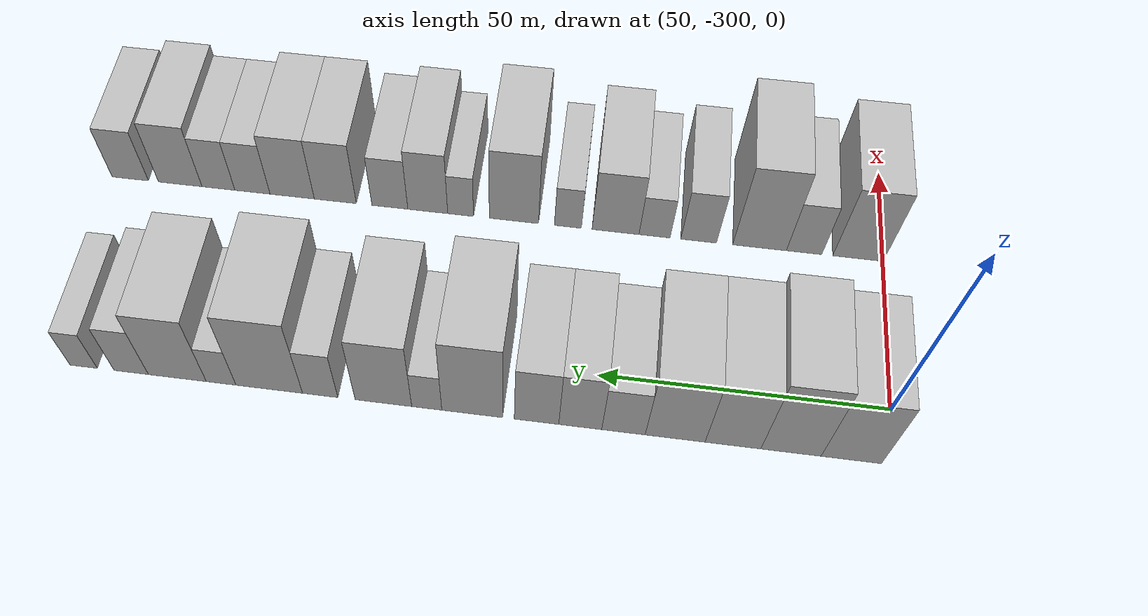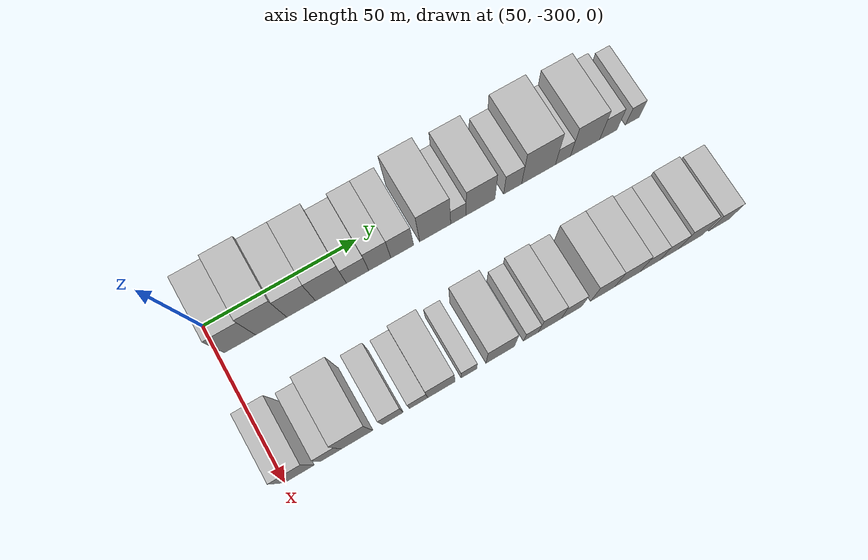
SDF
<sdf version="1.6">
 <world name="default">
  <model name="building_1">
   <static>1</static>
   <pose>50.0000 -293.0404 0 0.000000 0.000000 0.000000</pose>
   <link name="link">
    <pose>0 0 10.50 0 0 0</pose>
    <collision name="collision"><geometry><box><size>20.0000 9.9192 21.0000</size></box></geometry></collision>
    <visual name="visual">
     <cast_shadows>0</cast_shadows>
     <geometry><box><size>20.0000 9.9192 21.0000</size></box></geometry>
     <material>
      <script>
       <uri>model://HANNAS_wall/materials/scripts</uri>
       <uri>model://HANNAS_wall/materials/textures</uri>
       <name>vrc/HANNAS_wall</name>
      </script>
     </material>
    </visual>
   </link>
  </model>
  <model name="building_2">
   <static>1</static>
   <pose>50.0000 -283.0995 0 0.000000 0.000000 0.000000</pose>
   <link name="link">
    <pose>0 0 12.00 0 0 0</pose>
    <collision name="collision"><geometry><box><size>20.0000 9.9627 24.0000</size></box></geometry></collision>
    <visual name="visual">
     <cast_shadows>0</cast_shadows>
     <geometry><box><size>20.0000 9.9627 24.0000</size></box></geometry>
     <material>
      <script>
       <uri>model://HANNAS_wall/materials/scripts</uri>
       <uri>model://HANNAS_wall/materials/textures</uri>
       <name>vrc/HANNAS_wall</name>
      </script>
     </material>
    </visual>
   </link>
  </model>
  <model name="building_3">
   <static>1</static>
   <pose>50.0000 -273.4754 0 0.000000 0.000000 0.000000</pose>
   <link name="link">
    <pose>0 0 10.50 0 0 0</pose>
    <collision name="collision"><geometry><box><size>20.0000 9.2853 21.0000</size></box></geometry></collision>
    <visual name="visual">
     <cast_shadows>0</cast_shadows>
     <geometry><box><size>20.0000 9.2853 21.0000</size></box></geometry>
     <material>
      <script>
       <uri>model://HANNAS_wall/materials/scripts</uri>
       <uri>model://HANNAS_wall/materials/textures</uri>
       <name>vrc/HANNAS_wall</name>
      </script>
     </material>
    </visual>
   </link>
  </model>
  <model name="building_4">
   <static>1</static>
   <pose>50.0000 -263.8147 0 0.000000 0.000000 0.000000</pose>
   <link name="link">
    <pose>0 0 10.50 0 0 0</pose>
    <collision name="collision"><geometry><box><size>20.0000 10.0361 21.0000</size></box></geometry></collision>
    <visual name="visual">
     <cast_shadows>0</cast_shadows>
     <geometry><box><size>20.0000 10.0361 21.0000</size></box></geometry>
     <material>
      <script>
       <uri>model://HANNAS_wall/materials/scripts</uri>
       <uri>model://HANNAS_wall/materials/textures</uri>
       <name>vrc/HANNAS_wall</name>
      </script>
     </material>
    </visual>
   </link>
  </model>
  <model name="building_5">
   <static>1</static>
   <pose>50.0000 -255.1313 0 0.000000 0.000000 0.000000</pose>
   <link name="link">
    <pose>0 0 7.50 0 0 0</pose>
    <collision name="collision"><geometry><box><size>20.0000 7.3308 15.0000</size></box></geometry></collision>
    <visual name="visual">
     <cast_shadows>0</cast_shadows>
     <geometry><box><size>20.0000 7.3308 15.0000</size></box></geometry>
     <material>
      <script>
       <uri>model://HANNAS_wall/materials/scripts</uri>
       <uri>model://HANNAS_wall/materials/textures</uri>
       <name>vrc/HANNAS_wall</name>
      </script>
     </material>
    </visual>
   </link>
  </model>
  <model name="building_6">
   <static>1</static>
   <pose>50.0000 -247.8303 0 0.000000 0.000000 0.000000</pose>
   <link name="link">
    <pose>0 0 9.00 0 0 0</pose>
    <collision name="collision"><geometry><box><size>20.0000 7.2713 18.0000</size></box></geometry></collision>
    <visual name="visual">
     <cast_shadows>0</cast_shadows>
     <geometry><box><size>20.0000 7.2713 18.0000</size></box></geometry>
     <material>
      <script>
       <uri>model://HANNAS_wall/materials/scripts</uri>
       <uri>model://HANNAS_wall/materials/textures</uri>
       <name>vrc/HANNAS_wall</name>
      </script>
     </material>
    </visual>
   </link>
  </model>
  <model name="building_7">
   <static>1</static>
   <pose>50.0000 -240.4107 0 0.000000 0.000000 0.000000</pose>
   <link name="link">
    <pose>0 0 9.00 0 0 0</pose>
    <collision name="collision"><geometry><box><size>20.0000 7.5679 18.0000</size></box></geometry></collision>
    <visual name="visual">
     <cast_shadows>0</cast_shadows>
     <geometry><box><size>20.0000 7.5679 18.0000</size></box></geometry>
     <material>
      <script>
       <uri>model://HANNAS_wall/materials/scripts</uri>
       <uri>model://HANNAS_wall/materials/textures</uri>
       <name>vrc/HANNAS_wall</name>
      </script>
     </material>
    </visual>
   </link>
  </model>
  <model name="building_8">
   <static>1</static>
   <pose>50.0000 -229.4162 0 0.000000 0.000000 0.000000</pose>
   <link name="link">
    <pose>0 0 12.00 0 0 0</pose>
    <collision name="collision"><geometry><box><size>20.0000 10.4211 24.0000</size></box></geometry></collision>
    <visual name="visual">
     <cast_shadows>0</cast_shadows>
     <geometry><box><size>20.0000 10.4211 24.0000</size></box></geometry>
     <material>
      <script>
       <uri>model://HANNAS_wall/materials/scripts</uri>
       <uri>model://HANNAS_wall/materials/textures</uri>
       <name>vrc/HANNAS_wall</name>
      </script>
     </material>
    </visual>
   </link>
  </model>
  <model name="building_9">
   <static>1</static>
   <pose>50.0000 -221.6135 0 0.000000 0.000000 0.000000</pose>
   <link name="link">
    <pose>0 0 6.00 0 0 0</pose>
    <collision name="collision"><geometry><box><size>20.0000 5.1843 12.0000</size></box></geometry></collision>
    <visual name="visual">
     <cast_shadows>0</cast_shadows>
     <geometry><box><size>20.0000 5.1843 12.0000</size></box></geometry>
     <material>
      <script>
       <uri>model://HANNAS_wall/materials/scripts</uri>
       <uri>model://HANNAS_wall/materials/textures</uri>
       <name>vrc/HANNAS_wall</name>
      </script>
     </material>
    </visual>
   </link>
  </model>
  <model name="building_10">
   <static>1</static>
   <pose>50.0000 -214.1070 0 0.000000 0.000000 0.000000</pose>
   <link name="link">
    <pose>0 0 10.50 0 0 0</pose>
    <collision name="collision"><geometry><box><size>20.0000 9.8287 21.0000</size></box></geometry></collision>
    <visual name="visual">
     <cast_shadows>0</cast_shadows>
     <geometry><box><size>20.0000 9.8287 21.0000</size></box></geometry>
     <material>
      <script>
       <uri>model://HANNAS_wall/materials/scripts</uri>
       <uri>model://HANNAS_wall/materials/textures</uri>
       <name>vrc/HANNAS_wall</name>
      </script>
     </material>
    </visual>
   </link>
  </model>
  <model name="building_11">
   <static>1</static>
   <pose>50.0000 -203.1111 0 0.000000 0.000000 0.000000</pose>
   <link name="link">
    <pose>0 0 7.50 0 0 0</pose>
    <collision name="collision"><geometry><box><size>20.0000 6.1631 15.0000</size></box></geometry></collision>
    <visual name="visual">
     <cast_shadows>0</cast_shadows>
     <geometry><box><size>20.0000 6.1631 15.0000</size></box></geometry>
     <material>
      <script>
       <uri>model://HANNAS_wall/materials/scripts</uri>
       <uri>model://HANNAS_wall/materials/textures</uri>
       <name>vrc/HANNAS_wall</name>
      </script>
     </material>
    </visual>
   </link>
  </model>
  <model name="building_12">
   <static>1</static>
   <pose>50.0000 -194.1699 0 0.000000 0.000000 0.000000</pose>
   <link name="link">
    <pose>0 0 12.00 0 0 0</pose>
    <collision name="collision"><geometry><box><size>20.0000 11.7193 24.0000</size></box></geometry></collision>
    <visual name="visual">
     <cast_shadows>0</cast_shadows>
     <geometry><box><size>20.0000 11.7193 24.0000</size></box></geometry>
     <material>
      <script>
       <uri>model://HANNAS_wall/materials/scripts</uri>
       <uri>model://HANNAS_wall/materials/textures</uri>
       <name>vrc/HANNAS_wall</name>
      </script>
     </material>
    </visual>
   </link>
  </model>
  <model name="building_13">
   <static>1</static>
   <pose>50.0000 -185.6866 0 0.000000 0.000000 0.000000</pose>
   <link name="link">
    <pose>0 0 6.00 0 0 0</pose>
    <collision name="collision"><geometry><box><size>20.0000 5.2473 12.0000</size></box></geometry></collision>
    <visual name="visual">
     <cast_shadows>0</cast_shadows>
     <geometry><box><size>20.0000 5.2473 12.0000</size></box></geometry>
     <material>
      <script>
       <uri>model://HANNAS_wall/materials/scripts</uri>
       <uri>model://HANNAS_wall/materials/textures</uri>
       <name>vrc/HANNAS_wall</name>
      </script>
     </material>
    </visual>
   </link>
  </model>
  <model name="building_14">
   <static>1</static>
   <pose>50.0000 -177.9145 0 0.000000 0.000000 0.000000</pose>
   <link name="link">
    <pose>0 0 10.50 0 0 0</pose>
    <collision name="collision"><geometry><box><size>20.0000 10.2970 21.0000</size></box></geometry></collision>
    <visual name="visual">
     <cast_shadows>0</cast_shadows>
     <geometry><box><size>20.0000 10.2970 21.0000</size></box></geometry>
     <material>
      <script>
       <uri>model://HANNAS_wall/materials/scripts</uri>
       <uri>model://HANNAS_wall/materials/textures</uri>
       <name>vrc/HANNAS_wall</name>
      </script>
     </material>
    </visual>
   </link>
  </model>
  <model name="building_15">
   <static>1</static>
   <pose>50.0000 -169.6922 0 0.000000 0.000000 0.000000</pose>
   <link name="link">
    <pose>0 0 7.50 0 0 0</pose>
    <collision name="collision"><geometry><box><size>20.0000 6.1476 15.0000</size></box></geometry></collision>
    <visual name="visual">
     <cast_shadows>0</cast_shadows>
     <geometry><box><size>20.0000 6.1476 15.0000</size></box></geometry>
     <material>
      <script>
       <uri>model://HANNAS_wall/materials/scripts</uri>
       <uri>model://HANNAS_wall/materials/textures</uri>
       <name>vrc/HANNAS_wall</name>
      </script>
     </material>
    </visual>
   </link>
  </model>
  <model name="building_16">
   <static>1</static>
   <pose>50.0000 -161.1644 0 0.000000 0.000000 0.000000</pose>
   <link name="link">
    <pose>0 0 6.00 0 0 0</pose>
    <collision name="collision"><geometry><box><size>20.0000 4.9079 12.0000</size></box></geometry></collision>
    <visual name="visual">
     <cast_shadows>0</cast_shadows>
     <geometry><box><size>20.0000 4.9079 12.0000</size></box></geometry>
     <material>
      <script>
       <uri>model://HANNAS_wall/materials/scripts</uri>
       <uri>model://HANNAS_wall/materials/textures</uri>
       <name>vrc/HANNAS_wall</name>
      </script>
     </material>
    </visual>
   </link>
  </model>
  <model name="building_67">
   <static>1</static>
   <pose>90.0000 -295.4142 0 0.000000 0.000000 0.000000</pose>
   <link name="link">
    <pose>0 0 10.50 0 0 0</pose>
    <collision name="collision"><geometry><box><size>20.0000 9.1716 21.0000</size></box></geometry></collision>
    <visual name="visual">
     <cast_shadows>0</cast_shadows>
     <geometry><box><size>20.0000 9.1716 21.0000</size></box></geometry>
     <material>
      <script>
       <uri>model://HANNAS_wall/materials/scripts</uri>
       <uri>model://HANNAS_wall/materials/textures</uri>
       <name>vrc/HANNAS_wall</name>
      </script>
     </material>
    </visual>
   </link>
  </model>
  <model name="building_68">
   <static>1</static>
   <pose>90.0000 -285.5895 0 0.000000 0.000000 0.000000</pose>
   <link name="link">
    <pose>0 0 7.50 0 0 0</pose>
    <collision name="collision"><geometry><box><size>20.0000 6.4778 15.0000</size></box></geometry></collision>
    <visual name="visual">
     <cast_shadows>0</cast_shadows>
     <geometry><box><size>20.0000 6.4778 15.0000</size></box></geometry>
     <material>
      <script>
       <uri>model://HANNAS_wall/materials/scripts</uri>
       <uri>model://HANNAS_wall/materials/textures</uri>
       <name>vrc/HANNAS_wall</name>
      </script>
     </material>
    </visual>
   </link>
  </model>
  <model name="building_69">
   <static>1</static>
   <pose>90.0000 -277.4108 0 0.000000 0.000000 0.000000</pose>
   <link name="link">
    <pose>0 0 12.00 0 0 0</pose>
    <collision name="collision"><geometry><box><size>20.0000 9.8797 24.0000</size></box></geometry></collision>
    <visual name="visual">
     <cast_shadows>0</cast_shadows>
     <geometry><box><size>20.0000 9.8797 24.0000</size></box></geometry>
     <material>
      <script>
       <uri>model://HANNAS_wall/materials/scripts</uri>
       <uri>model://HANNAS_wall/materials/textures</uri>
       <name>vrc/HANNAS_wall</name>
      </script>
     </material>
    </visual>
   </link>
  </model>
  <model name="building_70">
   <static>1</static>
   <pose>90.0000 -266.1713 0 0.000000 0.000000 0.000000</pose>
   <link name="link">
    <pose>0 0 7.50 0 0 0</pose>
    <collision name="collision"><geometry><box><size>20.0000 6.5992 15.0000</size></box></geometry></collision>
    <visual name="visual">
     <cast_shadows>0</cast_shadows>
     <geometry><box><size>20.0000 6.5992 15.0000</size></box></geometry>
     <material>
      <script>
       <uri>model://HANNAS_wall/materials/scripts</uri>
       <uri>model://HANNAS_wall/materials/textures</uri>
       <name>vrc/HANNAS_wall</name>
      </script>
     </material>
    </visual>
   </link>
  </model>
  <model name="building_71">
   <static>1</static>
   <pose>90.0000 -257.9831 0 0.000000 0.000000 0.000000</pose>
   <link name="link">
    <pose>0 0 6.00 0 0 0</pose>
    <collision name="collision"><geometry><box><size>20.0000 5.7771 12.0000</size></box></geometry></collision>
    <visual name="visual">
     <cast_shadows>0</cast_shadows>
     <geometry><box><size>20.0000 5.7771 12.0000</size></box></geometry>
     <material>
      <script>
       <uri>model://HANNAS_wall/materials/scripts</uri>
       <uri>model://HANNAS_wall/materials/textures</uri>
       <name>vrc/HANNAS_wall</name>
      </script>
     </material>
    </visual>
   </link>
  </model>
  <model name="building_72">
   <static>1</static>
   <pose>90.0000 -250.7016 0 0.000000 0.000000 0.000000</pose>
   <link name="link">
    <pose>0 0 9.00 0 0 0</pose>
    <collision name="collision"><geometry><box><size>20.0000 8.7860 18.0000</size></box></geometry></collision>
    <visual name="visual">
     <cast_shadows>0</cast_shadows>
     <geometry><box><size>20.0000 8.7860 18.0000</size></box></geometry>
     <material>
      <script>
       <uri>model://HANNAS_wall/materials/scripts</uri>
       <uri>model://HANNAS_wall/materials/textures</uri>
       <name>vrc/HANNAS_wall</name>
      </script>
     </material>
    </visual>
   </link>
  </model>
  <model name="building_73">
   <static>1</static>
   <pose>90.0000 -241.7718 0 0.000000 0.000000 0.000000</pose>
   <link name="link">
    <pose>0 0 6.00 0 0 0</pose>
    <collision name="collision"><geometry><box><size>20.0000 5.0735 12.0000</size></box></geometry></collision>
    <visual name="visual">
     <cast_shadows>0</cast_shadows>
     <geometry><box><size>20.0000 5.0735 12.0000</size></box></geometry>
     <material>
      <script>
       <uri>model://HANNAS_wall/materials/scripts</uri>
       <uri>model://HANNAS_wall/materials/textures</uri>
       <name>vrc/HANNAS_wall</name>
      </script>
     </material>
    </visual>
   </link>
  </model>
  <model name="building_74">
   <static>1</static>
   <pose>90.0000 -231.5800 0 0.000000 0.000000 0.000000</pose>
   <link name="link">
    <pose>0 0 10.50 0 0 0</pose>
    <collision name="collision"><geometry><box><size>20.0000 9.3101 21.0000</size></box></geometry></collision>
    <visual name="visual">
     <cast_shadows>0</cast_shadows>
     <geometry><box><size>20.0000 9.3101 21.0000</size></box></geometry>
     <material>
      <script>
       <uri>model://HANNAS_wall/materials/scripts</uri>
       <uri>model://HANNAS_wall/materials/textures</uri>
       <name>vrc/HANNAS_wall</name>
      </script>
     </material>
    </visual>
   </link>
  </model>
  <model name="building_75">
   <static>1</static>
   <pose>90.0000 -221.4597 0 0.000000 0.000000 0.000000</pose>
   <link name="link">
    <pose>0 0 6.00 0 0 0</pose>
    <collision name="collision"><geometry><box><size>20.0000 4.9305 12.0000</size></box></geometry></collision>
    <visual name="visual">
     <cast_shadows>0</cast_shadows>
     <geometry><box><size>20.0000 4.9305 12.0000</size></box></geometry>
     <material>
      <script>
       <uri>model://HANNAS_wall/materials/scripts</uri>
       <uri>model://HANNAS_wall/materials/textures</uri>
       <name>vrc/HANNAS_wall</name>
      </script>
     </material>
    </visual>
   </link>
  </model>
  <model name="building_76">
   <static>1</static>
   <pose>90.0000 -215.1835 0 0.000000 0.000000 0.000000</pose>
   <link name="link">
    <pose>0 0 9.00 0 0 0</pose>
    <collision name="collision"><geometry><box><size>20.0000 7.6220 18.0000</size></box></geometry></collision>
    <visual name="visual">
     <cast_shadows>0</cast_shadows>
     <geometry><box><size>20.0000 7.6220 18.0000</size></box></geometry>
     <material>
      <script>
       <uri>model://HANNAS_wall/materials/scripts</uri>
       <uri>model://HANNAS_wall/materials/textures</uri>
       <name>vrc/HANNAS_wall</name>
      </script>
     </material>
    </visual>
   </link>
  </model>
  <model name="building_77">
   <static>1</static>
   <pose>90.0000 -207.9220 0 0.000000 0.000000 0.000000</pose>
   <link name="link">
    <pose>0 0 7.50 0 0 0</pose>
    <collision name="collision"><geometry><box><size>20.0000 6.9011 15.0000</size></box></geometry></collision>
    <visual name="visual">
     <cast_shadows>0</cast_shadows>
     <geometry><box><size>20.0000 6.9011 15.0000</size></box></geometry>
     <material>
      <script>
       <uri>model://HANNAS_wall/materials/scripts</uri>
       <uri>model://HANNAS_wall/materials/textures</uri>
       <name>vrc/HANNAS_wall</name>
      </script>
     </material>
    </visual>
   </link>
  </model>
  <model name="building_78">
   <static>1</static>
   <pose>90.0000 -197.4068 0 0.000000 0.000000 0.000000</pose>
   <link name="link">
    <pose>0 0 9.00 0 0 0</pose>
    <collision name="collision"><geometry><box><size>20.0000 8.1294 18.0000</size></box></geometry></collision>
    <visual name="visual">
     <cast_shadows>0</cast_shadows>
     <geometry><box><size>20.0000 8.1294 18.0000</size></box></geometry>
     <material>
      <script>
       <uri>model://HANNAS_wall/materials/scripts</uri>
       <uri>model://HANNAS_wall/materials/textures</uri>
       <name>vrc/HANNAS_wall</name>
      </script>
     </material>
    </visual>
   </link>
  </model>
  <model name="building_79">
   <static>1</static>
   <pose>90.0000 -189.0302 0 0.000000 0.000000 0.000000</pose>
   <link name="link">
    <pose>0 0 9.00 0 0 0</pose>
    <collision name="collision"><geometry><box><size>20.0000 8.6239 18.0000</size></box></geometry></collision>
    <visual name="visual">
     <cast_shadows>0</cast_shadows>
     <geometry><box><size>20.0000 8.6239 18.0000</size></box></geometry>
     <material>
      <script>
       <uri>model://HANNAS_wall/materials/scripts</uri>
       <uri>model://HANNAS_wall/materials/textures</uri>
       <name>vrc/HANNAS_wall</name>
      </script>
     </material>
    </visual>
   </link>
  </model>
  <model name="building_80">
   <static>1</static>
   <pose>90.0000 -181.2900 0 0.000000 0.000000 0.000000</pose>
   <link name="link">
    <pose>0 0 7.50 0 0 0</pose>
    <collision name="collision"><geometry><box><size>20.0000 6.8565 15.0000</size></box></geometry></collision>
    <visual name="visual">
     <cast_shadows>0</cast_shadows>
     <geometry><box><size>20.0000 6.8565 15.0000</size></box></geometry>
     <material>
      <script>
       <uri>model://HANNAS_wall/materials/scripts</uri>
       <uri>model://HANNAS_wall/materials/textures</uri>
       <name>vrc/HANNAS_wall</name>
      </script>
     </material>
    </visual>
   </link>
  </model>
  <model name="building_81">
   <static>1</static>
   <pose>90.0000 -174.6318 0 0.000000 0.000000 0.000000</pose>
   <link name="link">
    <pose>0 0 7.50 0 0 0</pose>
    <collision name="collision"><geometry><box><size>20.0000 6.4598 15.0000</size></box></geometry></collision>
    <visual name="visual">
     <cast_shadows>0</cast_shadows>
     <geometry><box><size>20.0000 6.4598 15.0000</size></box></geometry>
     <material>
      <script>
       <uri>model://HANNAS_wall/materials/scripts</uri>
       <uri>model://HANNAS_wall/materials/textures</uri>
       <name>vrc/HANNAS_wall</name>
      </script>
     </material>
    </visual>
   </link>
  </model>
  <model name="building_82">
   <static>1</static>
   <pose>90.0000 -167.1063 0 0.000000 0.000000 0.000000</pose>
   <link name="link">
    <pose>0 0 9.00 0 0 0</pose>
    <collision name="collision"><geometry><box><size>20.0000 8.5912 18.0000</size></box></geometry></collision>
    <visual name="visual">
     <cast_shadows>0</cast_shadows>
     <geometry><box><size>20.0000 8.5912 18.0000</size></box></geometry>
     <material>
      <script>
       <uri>model://HANNAS_wall/materials/scripts</uri>
       <uri>model://HANNAS_wall/materials/textures</uri>
       <name>vrc/HANNAS_wall</name>
      </script>
     </material>
    </visual>
   </link>
  </model>
  <model name="building_83">
   <static>1</static>
   <pose>90.0000 -157.2214 0 0.000000 0.000000 0.000000</pose>
   <link name="link">
    <pose>0 0 7.50 0 0 0</pose>
    <collision name="collision"><geometry><box><size>20.0000 7.1785 15.0000</size></box></geometry></collision>
    <visual name="visual">
     <cast_shadows>0</cast_shadows>
     <geometry><box><size>20.0000 7.1785 15.0000</size></box></geometry>
     <material>
      <script>
       <uri>model://HANNAS_wall/materials/scripts</uri>
       <uri>model://HANNAS_wall/materials/textures</uri>
       <name>vrc/HANNAS_wall</name>
      </script>
     </material>
    </visual>
   </link>
  </model>
 </world>
</sdf>
